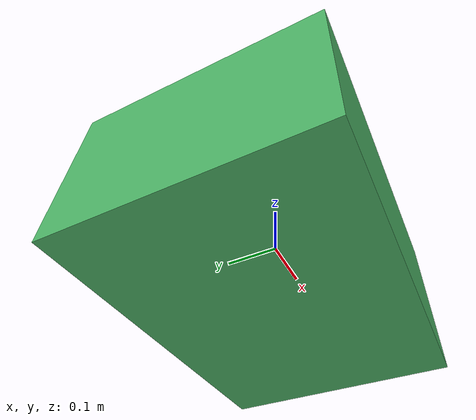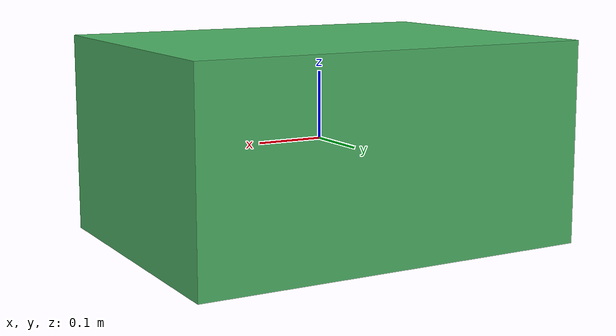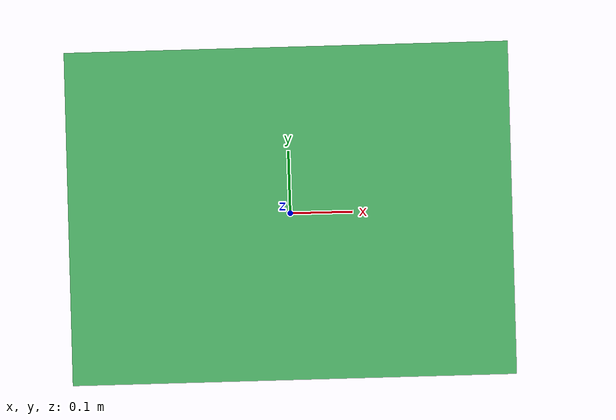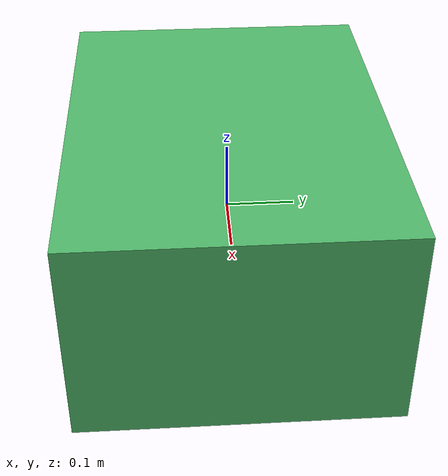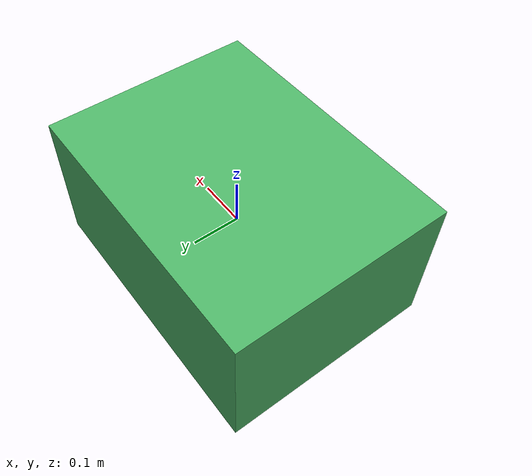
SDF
<?xml version='1.0'?><sdf version='1.9'><model name='robot_obstacle'><static>true</static><link name='body'><collision name='collision'><geometry><box><size>0.6 0.45 0.3</size></box></geometry></collision><visual name='visual'><geometry><box><size>0.6 0.45 0.3</size></box></geometry><material><diffuse>0.3 0.7 0.4 1</diffuse></material></visual></link></model></sdf>
